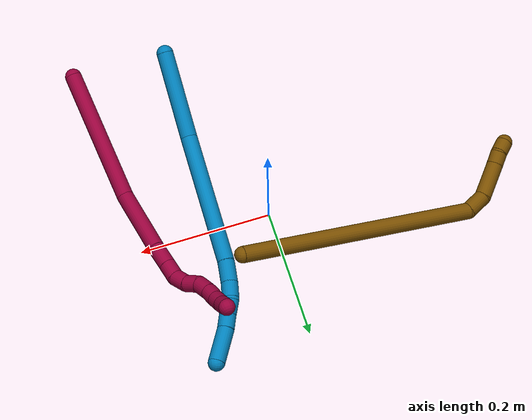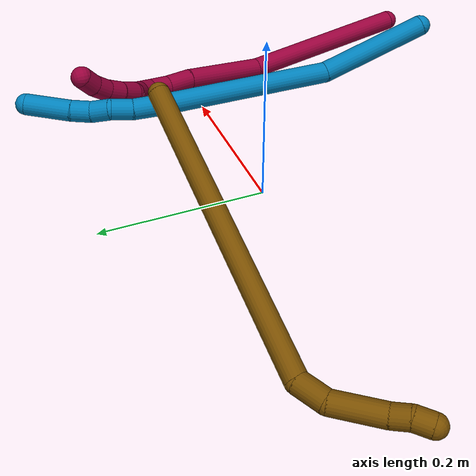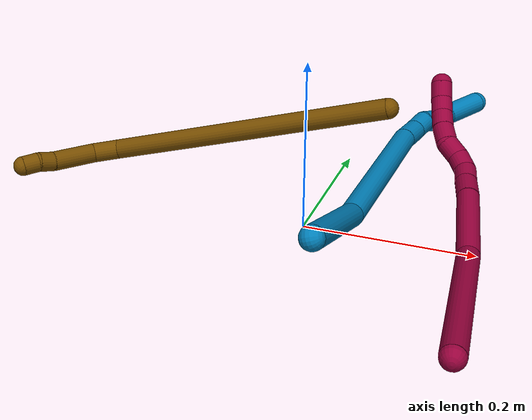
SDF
<sdf version="1.7">
 <world name="default">
  <model name="8">
   <static>0</static>
   <link name="8">
    <collision name="collision-cylinder-e_1_1_4">
     <pose>-0.009215 -0.008235 -0.103349 3.06208 -0.088648 -1.6794</pose>
     <geometry><cylinder><radius>0.0125</radius><length>0.208171</length></cylinder></geometry>
     <surface>
      <friction><ode><mu>1.16</mu><mu2>1.16</mu2><slip1>0</slip1><slip2>0</slip2></ode></friction>
      <contact><ode><kp>1e+06</kp><kd>1</kd><max_vel>0</max_vel><min_depth>0.001</min_depth></ode></contact>
     </surface>
    </collision>
    <visual name="visual-cylinder-e_1_1_4">
     <pose>-0.009215 -0.008235 -0.103349 3.06208 -0.088648 -1.6794</pose>
     <geometry><cylinder><radius>0.0125</radius><length>0.208171</length></cylinder></geometry>
     <material><ambient>0.584314 0 0.227451 1</ambient></material>
    </visual>
    <collision name="collision-cylinder-e_2_4_5">
     <pose>-0.018613 -0.007575 -0.257752 -2.96908 -0.003536 0.040892</pose>
     <geometry><cylinder><radius>0.0125</radius><length>0.103647</length></cylinder></geometry>
     <surface>
      <friction><ode><mu>1.16</mu><mu2>1.16</mu2><slip1>0</slip1><slip2>0</slip2></ode></friction>
      <contact><ode><kp>1e+06</kp><kd>1</kd><max_vel>0</max_vel><min_depth>0.001</min_depth></ode></contact>
     </surface>
    </collision>
    <visual name="visual-cylinder-e_2_4_5">
     <pose>-0.018613 -0.007575 -0.257752 -2.96908 -0.003536 0.040892</pose>
     <geometry><cylinder><radius>0.0125</radius><length>0.103647</length></cylinder></geometry>
     <material><ambient>0.584314 0 0.227451 1</ambient></material>
    </visual>
    <collision name="collision-cylinder-e_3_5_6">
     <pose>-0.020635 0.003454 -0.32509 -3.01138 -0.111498 1.41585</pose>
     <geometry><cylinder><radius>0.0125</radius><length>0.033052</length></cylinder></geometry>
     <surface>
      <friction><ode><mu>1.16</mu><mu2>1.16</mu2><slip1>0</slip1><slip2>0</slip2></ode></friction>
      <contact><ode><kp>1e+06</kp><kd>1</kd><max_vel>0</max_vel><min_depth>0.001</min_depth></ode></contact>
     </surface>
    </collision>
    <visual name="visual-cylinder-e_3_5_6">
     <pose>-0.020635 0.003454 -0.32509 -3.01138 -0.111498 1.41585</pose>
     <geometry><cylinder><radius>0.0125</radius><length>0.033052</length></cylinder></geometry>
     <material><ambient>0.584314 0 0.227451 1</ambient></material>
    </visual>
    <collision name="collision-cylinder-e_4_6_7">
     <pose>-0.022941 0.007843 -0.353626 -2.95945 -0.037467 0.404692</pose>
     <geometry><cylinder><radius>0.0125</radius><length>0.024933</length></cylinder></geometry>
     <surface>
      <friction><ode><mu>1.16</mu><mu2>1.16</mu2><slip1>0</slip1><slip2>0</slip2></ode></friction>
      <contact><ode><kp>1e+06</kp><kd>1</kd><max_vel>0</max_vel><min_depth>0.001</min_depth></ode></contact>
     </surface>
    </collision>
    <visual name="visual-cylinder-e_4_6_7">
     <pose>-0.022941 0.007843 -0.353626 -2.95945 -0.037467 0.404692</pose>
     <geometry><cylinder><radius>0.0125</radius><length>0.024933</length></cylinder></geometry>
     <material><ambient>0.584314 0 0.227451 1</ambient></material>
    </visual>
    <collision name="collision-cylinder-e_5_7_8">
     <pose>-0.025395 0.016093 -0.374968 -2.55866 -0.180523 0.585994</pose>
     <geometry><cylinder><radius>0.0125</radius><length>0.022137</length></cylinder></geometry>
     <surface>
      <friction><ode><mu>1.16</mu><mu2>1.16</mu2><slip1>0</slip1><slip2>0</slip2></ode></friction>
      <contact><ode><kp>1e+06</kp><kd>1</kd><max_vel>0</max_vel><min_depth>0.001</min_depth></ode></contact>
     </surface>
    </collision>
    <visual name="visual-cylinder-e_5_7_8">
     <pose>-0.025395 0.016093 -0.374968 -2.55866 -0.180523 0.585994</pose>
     <geometry><cylinder><radius>0.0125</radius><length>0.022137</length></cylinder></geometry>
     <material><ambient>0.584314 0 0.227451 1</ambient></material>
    </visual>
    <collision name="collision-cylinder-e_6_8_9">
     <pose>-0.030329 0.030859 -0.390264 -2.18644 -0.267694 0.509075</pose>
     <geometry><cylinder><radius>0.0125</radius><length>0.022282</length></cylinder></geometry>
     <surface>
      <friction><ode><mu>1.16</mu><mu2>1.16</mu2><slip1>0</slip1><slip2>0</slip2></ode></friction>
      <contact><ode><kp>1e+06</kp><kd>1</kd><max_vel>0</max_vel><min_depth>0.001</min_depth></ode></contact>
     </surface>
    </collision>
    <visual name="visual-cylinder-e_6_8_9">
     <pose>-0.030329 0.030859 -0.390264 -2.18644 -0.267694 0.509075</pose>
     <geometry><cylinder><radius>0.0125</radius><length>0.022282</length></cylinder></geometry>
     <material><ambient>0.584314 0 0.227451 1</ambient></material>
    </visual>
    <collision name="collision-cylinder-e_7_9_10">
     <pose>-0.033412 0.045854 -0.406525 -2.58748 -0.011495 0.040419</pose>
     <geometry><cylinder><radius>0.0125</radius><length>0.023655</length></cylinder></geometry>
     <surface>
      <friction><ode><mu>1.16</mu><mu2>1.16</mu2><slip1>0</slip1><slip2>0</slip2></ode></friction>
      <contact><ode><kp>1e+06</kp><kd>1</kd><max_vel>0</max_vel><min_depth>0.001</min_depth></ode></contact>
     </surface>
    </collision>
    <visual name="visual-cylinder-e_7_9_10">
     <pose>-0.033412 0.045854 -0.406525 -2.58748 -0.011495 0.040419</pose>
     <geometry><cylinder><radius>0.0125</radius><length>0.023655</length></cylinder></geometry>
     <material><ambient>0.584314 0 0.227451 1</ambient></material>
    </visual>
    <collision name="collision-cylinder-e_8_10_11">
     <pose>-0.032277 0.057124 -0.425829 -2.64198 0.12014 -0.463003</pose>
     <geometry><cylinder><radius>0.0125</radius><length>0.02122</length></cylinder></geometry>
     <surface>
      <friction><ode><mu>1.16</mu><mu2>1.16</mu2><slip1>0</slip1><slip2>0</slip2></ode></friction>
      <contact><ode><kp>1e+06</kp><kd>1</kd><max_vel>0</max_vel><min_depth>0.001</min_depth></ode></contact>
     </surface>
    </collision>
    <visual name="visual-cylinder-e_8_10_11">
     <pose>-0.032277 0.057124 -0.425829 -2.64198 0.12014 -0.463003</pose>
     <geometry><cylinder><radius>0.0125</radius><length>0.02122</length></cylinder></geometry>
     <material><ambient>0.584314 0 0.227451 1</ambient></material>
    </visual>
    <collision name="collision-cylinder-e_9_11_12">
     <pose>-0.028734 0.068034 -0.443014 -2.50545 0.22614 -0.664224</pose>
     <geometry><cylinder><radius>0.0125</radius><length>0.020255</length></cylinder></geometry>
     <surface>
      <friction><ode><mu>1.16</mu><mu2>1.16</mu2><slip1>0</slip1><slip2>0</slip2></ode></friction>
      <contact><ode><kp>1e+06</kp><kd>1</kd><max_vel>0</max_vel><min_depth>0.001</min_depth></ode></contact>
     </surface>
    </collision>
    <visual name="visual-cylinder-e_9_11_12">
     <pose>-0.028734 0.068034 -0.443014 -2.50545 0.22614 -0.664224</pose>
     <geometry><cylinder><radius>0.0125</radius><length>0.020255</length></cylinder></geometry>
     <material><ambient>0.584314 0 0.227451 1</ambient></material>
    </visual>
    <collision name="collision-cylinder-e_10_12_2">
     <pose>-0.022983 0.080891 -0.457702 -2.33831 0.343879 -0.776236</pose>
     <geometry><cylinder><radius>0.0125</radius><length>0.020647</length></cylinder></geometry>
     <surface>
      <friction><ode><mu>1.16</mu><mu2>1.16</mu2><slip1>0</slip1><slip2>0</slip2></ode></friction>
      <contact><ode><kp>1e+06</kp><kd>1</kd><max_vel>0</max_vel><min_depth>0.001</min_depth></ode></contact>
     </surface>
    </collision>
    <visual name="visual-cylinder-e_10_12_2">
     <pose>-0.022983 0.080891 -0.457702 -2.33831 0.343879 -0.776236</pose>
     <geometry><cylinder><radius>0.0125</radius><length>0.020647</length></cylinder></geometry>
     <material><ambient>0.584314 0 0.227451 1</ambient></material>
    </visual>
    <collision name="collision-sphere-2">
     <pose>-0.019502 0.087886 -0.46445 0 -0 0</pose>
     <geometry><sphere><radius>0.0125</radius></sphere></geometry>
     <surface>
      <friction><ode><mu>1.16</mu><mu2>1.16</mu2><slip1>0</slip1><slip2>0</slip2></ode></friction>
      <contact><ode><kp>1e+06</kp><kd>1</kd><max_vel>0</max_vel><min_depth>0.001</min_depth></ode></contact>
     </surface>
    </collision>
    <visual name="visual-sphere-2">
     <pose>-0.019502 0.087886 -0.46445 0 -0 0</pose>
     <geometry><sphere><radius>0.0125</radius></sphere></geometry>
     <material><ambient>0.584314 0 0.227451 1</ambient></material>
    </visual>
    <collision name="collision-sphere-12">
     <pose>-0.026463 0.073897 -0.450953 0 -0 0</pose>
     <geometry><sphere><radius>0.0125</radius></sphere></geometry>
     <surface>
      <friction><ode><mu>1.16</mu><mu2>1.16</mu2><slip1>0</slip1><slip2>0</slip2></ode></friction>
      <contact><ode><kp>1e+06</kp><kd>1</kd><max_vel>0</max_vel><min_depth>0.001</min_depth></ode></contact>
     </surface>
    </collision>
    <visual name="visual-sphere-12">
     <pose>-0.026463 0.073897 -0.450953 0 -0 0</pose>
     <geometry><sphere><radius>0.0125</radius></sphere></geometry>
     <material><ambient>0.584314 0 0.227451 1</ambient></material>
    </visual>
    <collision name="collision-sphere-11">
     <pose>-0.031005 0.06217 -0.435075 0 -0 0</pose>
     <geometry><sphere><radius>0.0125</radius></sphere></geometry>
     <surface>
      <friction><ode><mu>1.16</mu><mu2>1.16</mu2><slip1>0</slip1><slip2>0</slip2></ode></friction>
      <contact><ode><kp>1e+06</kp><kd>1</kd><max_vel>0</max_vel><min_depth>0.001</min_depth></ode></contact>
     </surface>
    </collision>
    <visual name="visual-sphere-11">
     <pose>-0.031005 0.06217 -0.435075 0 -0 0</pose>
     <geometry><sphere><radius>0.0125</radius></sphere></geometry>
     <material><ambient>0.584314 0 0.227451 1</ambient></material>
    </visual>
    <collision name="collision-sphere-10">
     <pose>-0.033548 0.052077 -0.416583 0 -0 0</pose>
     <geometry><sphere><radius>0.0125</radius></sphere></geometry>
     <surface>
      <friction><ode><mu>1.16</mu><mu2>1.16</mu2><slip1>0</slip1><slip2>0</slip2></ode></friction>
      <contact><ode><kp>1e+06</kp><kd>1</kd><max_vel>0</max_vel><min_depth>0.001</min_depth></ode></contact>
     </surface>
    </collision>
    <visual name="visual-sphere-10">
     <pose>-0.033548 0.052077 -0.416583 0 -0 0</pose>
     <geometry><sphere><radius>0.0125</radius></sphere></geometry>
     <material><ambient>0.584314 0 0.227451 1</ambient></material>
    </visual>
    <collision name="collision-sphere-9">
     <pose>-0.033276 0.039631 -0.396468 0 -0 0</pose>
     <geometry><sphere><radius>0.0125</radius></sphere></geometry>
     <surface>
      <friction><ode><mu>1.16</mu><mu2>1.16</mu2><slip1>0</slip1><slip2>0</slip2></ode></friction>
      <contact><ode><kp>1e+06</kp><kd>1</kd><max_vel>0</max_vel><min_depth>0.001</min_depth></ode></contact>
     </surface>
    </collision>
    <visual name="visual-sphere-9">
     <pose>-0.033276 0.039631 -0.396468 0 -0 0</pose>
     <geometry><sphere><radius>0.0125</radius></sphere></geometry>
     <material><ambient>0.584314 0 0.227451 1</ambient></material>
    </visual>
    <collision name="collision-sphere-4">
     <pose>-0.01843 -0.016471 -0.206698 0 -0 0</pose>
     <geometry><sphere><radius>0.0125</radius></sphere></geometry>
     <surface>
      <friction><ode><mu>1.16</mu><mu2>1.16</mu2><slip1>0</slip1><slip2>0</slip2></ode></friction>
      <contact><ode><kp>1e+06</kp><kd>1</kd><max_vel>0</max_vel><min_depth>0.001</min_depth></ode></contact>
     </surface>
    </collision>
    <visual name="visual-sphere-4">
     <pose>-0.01843 -0.016471 -0.206698 0 -0 0</pose>
     <geometry><sphere><radius>0.0125</radius></sphere></geometry>
     <material><ambient>0.584314 0 0.227451 1</ambient></material>
    </visual>
    <collision name="collision-sphere-1">
     <geometry><sphere><radius>0.0125</radius></sphere></geometry>
     <surface>
      <friction><ode><mu>1.16</mu><mu2>1.16</mu2><slip1>0</slip1><slip2>0</slip2></ode></friction>
      <contact><ode><kp>1e+06</kp><kd>1</kd><max_vel>0</max_vel><min_depth>0.001</min_depth></ode></contact>
     </surface>
    </collision>
    <visual name="visual-sphere-1">
     <geometry><sphere><radius>0.0125</radius></sphere></geometry>
     <material><ambient>0.584314 0 0.227451 1</ambient></material>
    </visual>
    <collision name="collision-sphere-8">
     <pose>-0.027382 0.022087 -0.384059 0 -0 0</pose>
     <geometry><sphere><radius>0.0125</radius></sphere></geometry>
     <surface>
      <friction><ode><mu>1.16</mu><mu2>1.16</mu2><slip1>0</slip1><slip2>0</slip2></ode></friction>
      <contact><ode><kp>1e+06</kp><kd>1</kd><max_vel>0</max_vel><min_depth>0.001</min_depth></ode></contact>
     </surface>
    </collision>
    <visual name="visual-sphere-8">
     <pose>-0.027382 0.022087 -0.384059 0 -0 0</pose>
     <geometry><sphere><radius>0.0125</radius></sphere></geometry>
     <material><ambient>0.584314 0 0.227451 1</ambient></material>
    </visual>
    <collision name="collision-sphere-5">
     <pose>-0.018796 0.001321 -0.308806 0 -0 0</pose>
     <geometry><sphere><radius>0.0125</radius></sphere></geometry>
     <surface>
      <friction><ode><mu>1.16</mu><mu2>1.16</mu2><slip1>0</slip1><slip2>0</slip2></ode></friction>
      <contact><ode><kp>1e+06</kp><kd>1</kd><max_vel>0</max_vel><min_depth>0.001</min_depth></ode></contact>
     </surface>
    </collision>
    <visual name="visual-sphere-5">
     <pose>-0.018796 0.001321 -0.308806 0 -0 0</pose>
     <geometry><sphere><radius>0.0125</radius></sphere></geometry>
     <material><ambient>0.584314 0 0.227451 1</ambient></material>
    </visual>
    <collision name="collision-sphere-6">
     <pose>-0.022474 0.005586 -0.341375 0 -0 0</pose>
     <geometry><sphere><radius>0.0125</radius></sphere></geometry>
     <surface>
      <friction><ode><mu>1.16</mu><mu2>1.16</mu2><slip1>0</slip1><slip2>0</slip2></ode></friction>
      <contact><ode><kp>1e+06</kp><kd>1</kd><max_vel>0</max_vel><min_depth>0.001</min_depth></ode></contact>
     </surface>
    </collision>
    <visual name="visual-sphere-6">
     <pose>-0.022474 0.005586 -0.341375 0 -0 0</pose>
     <geometry><sphere><radius>0.0125</radius></sphere></geometry>
     <material><ambient>0.584314 0 0.227451 1</ambient></material>
    </visual>
    <collision name="collision-sphere-7">
     <pose>-0.023408 0.010099 -0.365878 0 -0 0</pose>
     <geometry><sphere><radius>0.0125</radius></sphere></geometry>
     <surface>
      <friction><ode><mu>1.16</mu><mu2>1.16</mu2><slip1>0</slip1><slip2>0</slip2></ode></friction>
      <contact><ode><kp>1e+06</kp><kd>1</kd><max_vel>0</max_vel><min_depth>0.001</min_depth></ode></contact>
     </surface>
    </collision>
    <visual name="visual-sphere-7">
     <pose>-0.023408 0.010099 -0.365878 0 -0 0</pose>
     <geometry><sphere><radius>0.0125</radius></sphere></geometry>
     <material><ambient>0.584314 0 0.227451 1</ambient></material>
    </visual>
    <inertial>
     <pose>-0.017743 0.008398 -0.243728 0 -0 0</pose>
     <mass>0.5</mass>
     <inertia>
      <ixx>-0.00072</ixx>
      <ixy>0</ixy>
      <ixz>0</ixz>
      <iyy>-0.000754</iyy>
      <iyz>0</iyz>
      <izz>6.8e-05</izz>
     </inertia>
    </inertial>
   </link>
   <pose>0.220678 -0.282738 0.063186 1.59497 -0.645247 0.062387</pose>
  </model>
  <model name="9">
   <static>0</static>
   <link name="9">
    <collision name="collision-cylinder-e_1_1_4">
     <pose>-0.043812 0.048449 0.011108 -1.34543 -0.722451 0.584728</pose>
     <geometry><cylinder><radius>0.0125</radius><length>0.132517</length></cylinder></geometry>
     <surface>
      <friction><ode><mu>1.16</mu><mu2>1.16</mu2><slip1>0</slip1><slip2>0</slip2></ode></friction>
      <contact><ode><kp>1e+06</kp><kd>1</kd><max_vel>0</max_vel><min_depth>0.001</min_depth></ode></contact>
     </surface>
    </collision>
    <visual name="visual-cylinder-e_1_1_4">
     <pose>-0.043812 0.048449 0.011108 -1.34543 -0.722451 0.584728</pose>
     <geometry><cylinder><radius>0.0125</radius><length>0.132517</length></cylinder></geometry>
     <material><ambient>0 0.490196 0.709804 1</ambient></material>
    </visual>
    <collision name="collision-cylinder-e_2_4_5">
     <pose>-0.133498 0.189703 0.027113 -1.51806 -0.458537 0.43573</pose>
     <geometry><cylinder><radius>0.0125</radius><length>0.207278</length></cylinder></geometry>
     <surface>
      <friction><ode><mu>1.16</mu><mu2>1.16</mu2><slip1>0</slip1><slip2>0</slip2></ode></friction>
      <contact><ode><kp>1e+06</kp><kd>1</kd><max_vel>0</max_vel><min_depth>0.001</min_depth></ode></contact>
     </surface>
    </collision>
    <visual name="visual-cylinder-e_2_4_5">
     <pose>-0.133498 0.189703 0.027113 -1.51806 -0.458537 0.43573</pose>
     <geometry><cylinder><radius>0.0125</radius><length>0.207278</length></cylinder></geometry>
     <material><ambient>0 0.490196 0.709804 1</ambient></material>
    </visual>
    <collision name="collision-cylinder-e_3_5_6">
     <pose>-0.188089 0.297024 0.031179 -1.62813 -0.540022 0.570249</pose>
     <geometry><cylinder><radius>0.0125</radius><length>0.033906</length></cylinder></geometry>
     <surface>
      <friction><ode><mu>1.16</mu><mu2>1.16</mu2><slip1>0</slip1><slip2>0</slip2></ode></friction>
      <contact><ode><kp>1e+06</kp><kd>1</kd><max_vel>0</max_vel><min_depth>0.001</min_depth></ode></contact>
     </surface>
    </collision>
    <visual name="visual-cylinder-e_3_5_6">
     <pose>-0.188089 0.297024 0.031179 -1.62813 -0.540022 0.570249</pose>
     <geometry><cylinder><radius>0.0125</radius><length>0.033906</length></cylinder></geometry>
     <material><ambient>0 0.490196 0.709804 1</ambient></material>
    </visual>
    <collision name="collision-cylinder-e_4_6_7">
     <pose>-0.202127 0.322973 0.028082 -1.76625 -0.428288 0.517636</pose>
     <geometry><cylinder><radius>0.0125</radius><length>0.025624</length></cylinder></geometry>
     <surface>
      <friction><ode><mu>1.16</mu><mu2>1.16</mu2><slip1>0</slip1><slip2>0</slip2></ode></friction>
      <contact><ode><kp>1e+06</kp><kd>1</kd><max_vel>0</max_vel><min_depth>0.001</min_depth></ode></contact>
     </surface>
    </collision>
    <visual name="visual-cylinder-e_4_6_7">
     <pose>-0.202127 0.322973 0.028082 -1.76625 -0.428288 0.517636</pose>
     <geometry><cylinder><radius>0.0125</radius><length>0.025624</length></cylinder></geometry>
     <material><ambient>0 0.490196 0.709804 1</ambient></material>
    </visual>
    <collision name="collision-cylinder-e_5_7_8">
     <pose>-0.215736 0.341736 0.022595 -1.98512 -0.802662 1.15306</pose>
     <geometry><cylinder><radius>0.0125</radius><length>0.023049</length></cylinder></geometry>
     <surface>
      <friction><ode><mu>1.16</mu><mu2>1.16</mu2><slip1>0</slip1><slip2>0</slip2></ode></friction>
      <contact><ode><kp>1e+06</kp><kd>1</kd><max_vel>0</max_vel><min_depth>0.001</min_depth></ode></contact>
     </surface>
    </collision>
    <visual name="visual-cylinder-e_5_7_8">
     <pose>-0.215736 0.341736 0.022595 -1.98512 -0.802662 1.15306</pose>
     <geometry><cylinder><radius>0.0125</radius><length>0.023049</length></cylinder></geometry>
     <material><ambient>0 0.490196 0.709804 1</ambient></material>
    </visual>
    <collision name="collision-cylinder-e_6_8_9">
     <pose>-0.230008 0.358445 0.015502 -1.96209 -0.532768 0.774347</pose>
     <geometry><cylinder><radius>0.0125</radius><length>0.023558</length></cylinder></geometry>
     <surface>
      <friction><ode><mu>1.16</mu><mu2>1.16</mu2><slip1>0</slip1><slip2>0</slip2></ode></friction>
      <contact><ode><kp>1e+06</kp><kd>1</kd><max_vel>0</max_vel><min_depth>0.001</min_depth></ode></contact>
     </surface>
    </collision>
    <visual name="visual-cylinder-e_6_8_9">
     <pose>-0.230008 0.358445 0.015502 -1.96209 -0.532768 0.774347</pose>
     <geometry><cylinder><radius>0.0125</radius><length>0.023558</length></cylinder></geometry>
     <material><ambient>0 0.490196 0.709804 1</ambient></material>
    </visual>
    <collision name="collision-cylinder-e_7_9_2">
     <pose>-0.249631 0.387952 -0.000186 -2.10172 -0.528878 0.883628</pose>
     <geometry><cylinder><radius>0.0125</radius><length>0.054067</length></cylinder></geometry>
     <surface>
      <friction><ode><mu>1.16</mu><mu2>1.16</mu2><slip1>0</slip1><slip2>0</slip2></ode></friction>
      <contact><ode><kp>1e+06</kp><kd>1</kd><max_vel>0</max_vel><min_depth>0.001</min_depth></ode></contact>
     </surface>
    </collision>
    <visual name="visual-cylinder-e_7_9_2">
     <pose>-0.249631 0.387952 -0.000186 -2.10172 -0.528878 0.883628</pose>
     <geometry><cylinder><radius>0.0125</radius><length>0.054067</length></cylinder></geometry>
     <material><ambient>0 0.490196 0.709804 1</ambient></material>
    </visual>
    <collision name="collision-sphere-2">
     <pose>-0.263271 0.408079 -0.012003 0 -0 0</pose>
     <geometry><sphere><radius>0.0125</radius></sphere></geometry>
     <surface>
      <friction><ode><mu>1.16</mu><mu2>1.16</mu2><slip1>0</slip1><slip2>0</slip2></ode></friction>
      <contact><ode><kp>1e+06</kp><kd>1</kd><max_vel>0</max_vel><min_depth>0.001</min_depth></ode></contact>
     </surface>
    </collision>
    <visual name="visual-sphere-2">
     <pose>-0.263271 0.408079 -0.012003 0 -0 0</pose>
     <geometry><sphere><radius>0.0125</radius></sphere></geometry>
     <material><ambient>0 0.490196 0.709804 1</ambient></material>
    </visual>
    <collision name="collision-sphere-9">
     <pose>-0.23599 0.367825 0.011632 0 -0 0</pose>
     <geometry><sphere><radius>0.0125</radius></sphere></geometry>
     <surface>
      <friction><ode><mu>1.16</mu><mu2>1.16</mu2><slip1>0</slip1><slip2>0</slip2></ode></friction>
      <contact><ode><kp>1e+06</kp><kd>1</kd><max_vel>0</max_vel><min_depth>0.001</min_depth></ode></contact>
     </surface>
    </collision>
    <visual name="visual-sphere-9">
     <pose>-0.23599 0.367825 0.011632 0 -0 0</pose>
     <geometry><sphere><radius>0.0125</radius></sphere></geometry>
     <material><ambient>0 0.490196 0.709804 1</ambient></material>
    </visual>
    <collision name="collision-sphere-4">
     <pose>-0.087624 0.096899 0.022215 0 -0 0</pose>
     <geometry><sphere><radius>0.0125</radius></sphere></geometry>
     <surface>
      <friction><ode><mu>1.16</mu><mu2>1.16</mu2><slip1>0</slip1><slip2>0</slip2></ode></friction>
      <contact><ode><kp>1e+06</kp><kd>1</kd><max_vel>0</max_vel><min_depth>0.001</min_depth></ode></contact>
     </surface>
    </collision>
    <visual name="visual-sphere-4">
     <pose>-0.087624 0.096899 0.022215 0 -0 0</pose>
     <geometry><sphere><radius>0.0125</radius></sphere></geometry>
     <material><ambient>0 0.490196 0.709804 1</ambient></material>
    </visual>
    <collision name="collision-sphere-1">
     <geometry><sphere><radius>0.0125</radius></sphere></geometry>
     <surface>
      <friction><ode><mu>1.16</mu><mu2>1.16</mu2><slip1>0</slip1><slip2>0</slip2></ode></friction>
      <contact><ode><kp>1e+06</kp><kd>1</kd><max_vel>0</max_vel><min_depth>0.001</min_depth></ode></contact>
     </surface>
    </collision>
    <visual name="visual-sphere-1">
     <geometry><sphere><radius>0.0125</radius></sphere></geometry>
     <material><ambient>0 0.490196 0.709804 1</ambient></material>
    </visual>
    <collision name="collision-sphere-8">
     <pose>-0.224025 0.349066 0.019372 0 -0 0</pose>
     <geometry><sphere><radius>0.0125</radius></sphere></geometry>
     <surface>
      <friction><ode><mu>1.16</mu><mu2>1.16</mu2><slip1>0</slip1><slip2>0</slip2></ode></friction>
      <contact><ode><kp>1e+06</kp><kd>1</kd><max_vel>0</max_vel><min_depth>0.001</min_depth></ode></contact>
     </surface>
    </collision>
    <visual name="visual-sphere-8">
     <pose>-0.224025 0.349066 0.019372 0 -0 0</pose>
     <geometry><sphere><radius>0.0125</radius></sphere></geometry>
     <material><ambient>0 0.490196 0.709804 1</ambient></material>
    </visual>
    <collision name="collision-sphere-5">
     <pose>-0.179373 0.282507 0.032012 0 -0 0</pose>
     <geometry><sphere><radius>0.0125</radius></sphere></geometry>
     <surface>
      <friction><ode><mu>1.16</mu><mu2>1.16</mu2><slip1>0</slip1><slip2>0</slip2></ode></friction>
      <contact><ode><kp>1e+06</kp><kd>1</kd><max_vel>0</max_vel><min_depth>0.001</min_depth></ode></contact>
     </surface>
    </collision>
    <visual name="visual-sphere-5">
     <pose>-0.179373 0.282507 0.032012 0 -0 0</pose>
     <geometry><sphere><radius>0.0125</radius></sphere></geometry>
     <material><ambient>0 0.490196 0.709804 1</ambient></material>
    </visual>
    <collision name="collision-sphere-6">
     <pose>-0.196806 0.311541 0.030346 0 -0 0</pose>
     <geometry><sphere><radius>0.0125</radius></sphere></geometry>
     <surface>
      <friction><ode><mu>1.16</mu><mu2>1.16</mu2><slip1>0</slip1><slip2>0</slip2></ode></friction>
      <contact><ode><kp>1e+06</kp><kd>1</kd><max_vel>0</max_vel><min_depth>0.001</min_depth></ode></contact>
     </surface>
    </collision>
    <visual name="visual-sphere-6">
     <pose>-0.196806 0.311541 0.030346 0 -0 0</pose>
     <geometry><sphere><radius>0.0125</radius></sphere></geometry>
     <material><ambient>0 0.490196 0.709804 1</ambient></material>
    </visual>
    <collision name="collision-sphere-7">
     <pose>-0.207448 0.334406 0.025819 0 -0 0</pose>
     <geometry><sphere><radius>0.0125</radius></sphere></geometry>
     <surface>
      <friction><ode><mu>1.16</mu><mu2>1.16</mu2><slip1>0</slip1><slip2>0</slip2></ode></friction>
      <contact><ode><kp>1e+06</kp><kd>1</kd><max_vel>0</max_vel><min_depth>0.001</min_depth></ode></contact>
     </surface>
    </collision>
    <visual name="visual-sphere-7">
     <pose>-0.207448 0.334406 0.025819 0 -0 0</pose>
     <geometry><sphere><radius>0.0125</radius></sphere></geometry>
     <material><ambient>0 0.490196 0.709804 1</ambient></material>
    </visual>
    <inertial>
     <pose>-0.137843 0.20277 0.019489 0 -0 0</pose>
     <mass>0.5</mass>
     <inertia>
      <ixx>0.001111</ixx>
      <ixy>0</ixy>
      <ixz>0</ixz>
      <iyy>0.0007</iyy>
      <iyz>0</iyz>
      <izz>-0.000361</izz>
     </inertia>
    </inertial>
   </link>
   <pose>0.084065 -0.244414 0.129506 2.298 -0.971478 -2.28435</pose>
  </model>
  <model name="12">
   <static>0</static>
   <link name="12">
    <collision name="collision-cylinder-e_1_1_4">
     <pose>-0.145784 0.012791 0.113407 -0.112312 -0.906604 0.054755</pose>
     <geometry><cylinder><radius>0.0125</radius><length>0.370285</length></cylinder></geometry>
     <surface>
      <friction><ode><mu>1.16</mu><mu2>1.16</mu2><slip1>0</slip1><slip2>0</slip2></ode></friction>
      <contact><ode><kp>1e+06</kp><kd>1</kd><max_vel>0</max_vel><min_depth>0.001</min_depth></ode></contact>
     </surface>
    </collision>
    <visual name="visual-cylinder-e_1_1_4">
     <pose>-0.145784 0.012791 0.113407 -0.112312 -0.906604 0.054755</pose>
     <geometry><cylinder><radius>0.0125</radius><length>0.370285</length></cylinder></geometry>
     <material><ambient>0.466667 0.301961 0 1</ambient></material>
    </visual>
    <collision name="collision-cylinder-e_2_4_5">
     <pose>-0.305764 0.019316 0.23307 0.786186 -1.01312 -0.452295</pose>
     <geometry><cylinder><radius>0.0125</radius><length>0.033461</length></cylinder></geometry>
     <surface>
      <friction><ode><mu>1.16</mu><mu2>1.16</mu2><slip1>0</slip1><slip2>0</slip2></ode></friction>
      <contact><ode><kp>1e+06</kp><kd>1</kd><max_vel>0</max_vel><min_depth>0.001</min_depth></ode></contact>
     </surface>
    </collision>
    <visual name="visual-cylinder-e_2_4_5">
     <pose>-0.305764 0.019316 0.23307 0.786186 -1.01312 -0.452295</pose>
     <geometry><cylinder><radius>0.0125</radius><length>0.033461</length></cylinder></geometry>
     <material><ambient>0.466667 0.301961 0 1</ambient></material>
    </visual>
    <collision name="collision-cylinder-e_3_5_6">
     <pose>-0.341467 -0.00491 0.241556 1.44723 -0.871268 -0.780292</pose>
     <geometry><cylinder><radius>0.0125</radius><length>0.056219</length></cylinder></geometry>
     <surface>
      <friction><ode><mu>1.16</mu><mu2>1.16</mu2><slip1>0</slip1><slip2>0</slip2></ode></friction>
      <contact><ode><kp>1e+06</kp><kd>1</kd><max_vel>0</max_vel><min_depth>0.001</min_depth></ode></contact>
     </surface>
    </collision>
    <visual name="visual-cylinder-e_3_5_6">
     <pose>-0.341467 -0.00491 0.241556 1.44723 -0.871268 -0.780292</pose>
     <geometry><cylinder><radius>0.0125</radius><length>0.056219</length></cylinder></geometry>
     <material><ambient>0.466667 0.301961 0 1</ambient></material>
    </visual>
    <collision name="collision-cylinder-e_4_6_7">
     <pose>-0.369444 -0.030393 0.245163 1.3899 -0.702164 -0.592707</pose>
     <geometry><cylinder><radius>0.0125</radius><length>0.020034</length></cylinder></geometry>
     <surface>
      <friction><ode><mu>1.16</mu><mu2>1.16</mu2><slip1>0</slip1><slip2>0</slip2></ode></friction>
      <contact><ode><kp>1e+06</kp><kd>1</kd><max_vel>0</max_vel><min_depth>0.001</min_depth></ode></contact>
     </surface>
    </collision>
    <visual name="visual-cylinder-e_4_6_7">
     <pose>-0.369444 -0.030393 0.245163 1.3899 -0.702164 -0.592707</pose>
     <geometry><cylinder><radius>0.0125</radius><length>0.020034</length></cylinder></geometry>
     <material><ambient>0.466667 0.301961 0 1</ambient></material>
    </visual>
    <collision name="collision-cylinder-e_5_7_2">
     <pose>-0.384263 -0.043274 0.247804 1.33883 -0.987823 -0.805532</pose>
     <geometry><cylinder><radius>0.0125</radius><length>0.020002</length></cylinder></geometry>
     <surface>
      <friction><ode><mu>1.16</mu><mu2>1.16</mu2><slip1>0</slip1><slip2>0</slip2></ode></friction>
      <contact><ode><kp>1e+06</kp><kd>1</kd><max_vel>0</max_vel><min_depth>0.001</min_depth></ode></contact>
     </surface>
    </collision>
    <visual name="visual-cylinder-e_5_7_2">
     <pose>-0.384263 -0.043274 0.247804 1.33883 -0.987823 -0.805532</pose>
     <geometry><cylinder><radius>0.0125</radius><length>0.020002</length></cylinder></geometry>
     <material><ambient>0.466667 0.301961 0 1</ambient></material>
    </visual>
    <collision name="collision-sphere-2">
     <pose>-0.392612 -0.048632 0.24907 0 -0 0</pose>
     <geometry><sphere><radius>0.0125</radius></sphere></geometry>
     <surface>
      <friction><ode><mu>1.16</mu><mu2>1.16</mu2><slip1>0</slip1><slip2>0</slip2></ode></friction>
      <contact><ode><kp>1e+06</kp><kd>1</kd><max_vel>0</max_vel><min_depth>0.001</min_depth></ode></contact>
     </surface>
    </collision>
    <visual name="visual-sphere-2">
     <pose>-0.392612 -0.048632 0.24907 0 -0 0</pose>
     <geometry><sphere><radius>0.0125</radius></sphere></geometry>
     <material><ambient>0.466667 0.301961 0 1</ambient></material>
    </visual>
    <collision name="collision-sphere-7">
     <pose>-0.375914 -0.037916 0.246539 0 -0 0</pose>
     <geometry><sphere><radius>0.0125</radius></sphere></geometry>
     <surface>
      <friction><ode><mu>1.16</mu><mu2>1.16</mu2><slip1>0</slip1><slip2>0</slip2></ode></friction>
      <contact><ode><kp>1e+06</kp><kd>1</kd><max_vel>0</max_vel><min_depth>0.001</min_depth></ode></contact>
     </surface>
    </collision>
    <visual name="visual-sphere-7">
     <pose>-0.375914 -0.037916 0.246539 0 -0 0</pose>
     <geometry><sphere><radius>0.0125</radius></sphere></geometry>
     <material><ambient>0.466667 0.301961 0 1</ambient></material>
    </visual>
    <collision name="collision-sphere-6">
     <pose>-0.362975 -0.022871 0.243787 0 -0 0</pose>
     <geometry><sphere><radius>0.0125</radius></sphere></geometry>
     <surface>
      <friction><ode><mu>1.16</mu><mu2>1.16</mu2><slip1>0</slip1><slip2>0</slip2></ode></friction>
      <contact><ode><kp>1e+06</kp><kd>1</kd><max_vel>0</max_vel><min_depth>0.001</min_depth></ode></contact>
     </surface>
    </collision>
    <visual name="visual-sphere-6">
     <pose>-0.362975 -0.022871 0.243787 0 -0 0</pose>
     <geometry><sphere><radius>0.0125</radius></sphere></geometry>
     <material><ambient>0.466667 0.301961 0 1</ambient></material>
    </visual>
    <collision name="collision-sphere-5">
     <pose>-0.319959 0.01305 0.239326 0 -0 0</pose>
     <geometry><sphere><radius>0.0125</radius></sphere></geometry>
     <surface>
      <friction><ode><mu>1.16</mu><mu2>1.16</mu2><slip1>0</slip1><slip2>0</slip2></ode></friction>
      <contact><ode><kp>1e+06</kp><kd>1</kd><max_vel>0</max_vel><min_depth>0.001</min_depth></ode></contact>
     </surface>
    </collision>
    <visual name="visual-sphere-5">
     <pose>-0.319959 0.01305 0.239326 0 -0 0</pose>
     <geometry><sphere><radius>0.0125</radius></sphere></geometry>
     <material><ambient>0.466667 0.301961 0 1</ambient></material>
    </visual>
    <collision name="collision-sphere-1">
     <geometry><sphere><radius>0.0125</radius></sphere></geometry>
     <surface>
      <friction><ode><mu>1.16</mu><mu2>1.16</mu2><slip1>0</slip1><slip2>0</slip2></ode></friction>
      <contact><ode><kp>1e+06</kp><kd>1</kd><max_vel>0</max_vel><min_depth>0.001</min_depth></ode></contact>
     </surface>
    </collision>
    <visual name="visual-sphere-1">
     <geometry><sphere><radius>0.0125</radius></sphere></geometry>
     <material><ambient>0.466667 0.301961 0 1</ambient></material>
    </visual>
    <collision name="collision-sphere-4">
     <pose>-0.291568 0.025582 0.226814 0 -0 0</pose>
     <geometry><sphere><radius>0.0125</radius></sphere></geometry>
     <surface>
      <friction><ode><mu>1.16</mu><mu2>1.16</mu2><slip1>0</slip1><slip2>0</slip2></ode></friction>
      <contact><ode><kp>1e+06</kp><kd>1</kd><max_vel>0</max_vel><min_depth>0.001</min_depth></ode></contact>
     </surface>
    </collision>
    <visual name="visual-sphere-4">
     <pose>-0.291568 0.025582 0.226814 0 -0 0</pose>
     <geometry><sphere><radius>0.0125</radius></sphere></geometry>
     <material><ambient>0.466667 0.301961 0 1</ambient></material>
    </visual>
    <inertial>
     <pose>-0.196994 0.007264 0.146479 0 -0 0</pose>
     <mass>0.5</mass>
     <inertia>
      <ixx>0.002727</ixx>
      <ixy>0</ixy>
      <ixz>0</ixz>
      <iyy>0.004379</iyy>
      <iyz>0</iyz>
      <izz>0.003102</izz>
     </inertia>
    </inertial>
   </link>
   <pose>0.069616 0.098811 0.119705 -1.06523 -0.642946 0.659217</pose>
  </model>
 </world>
</sdf>
